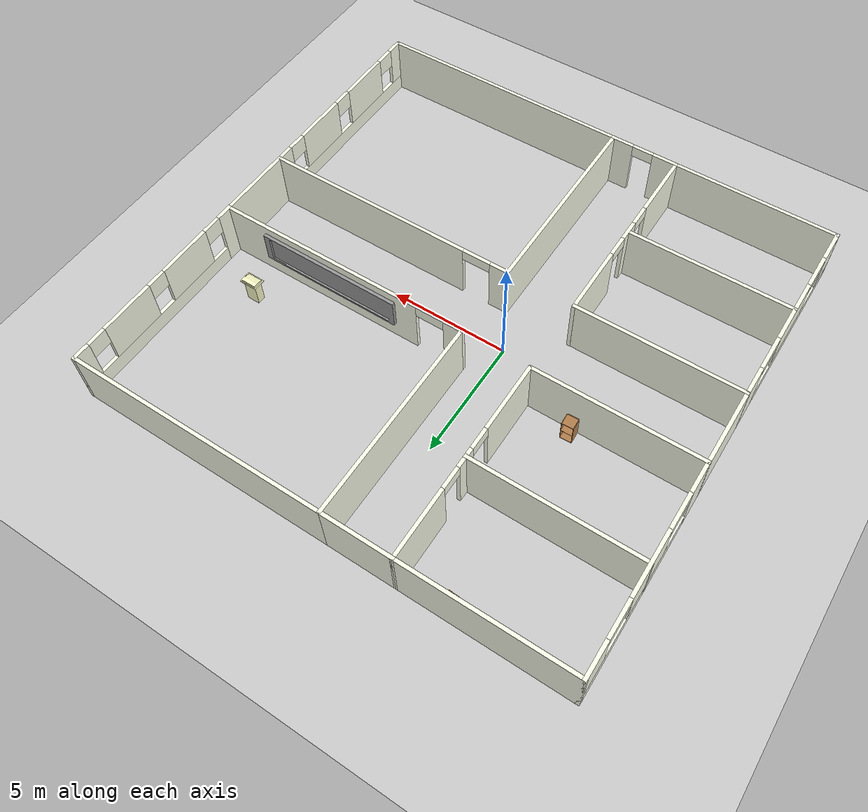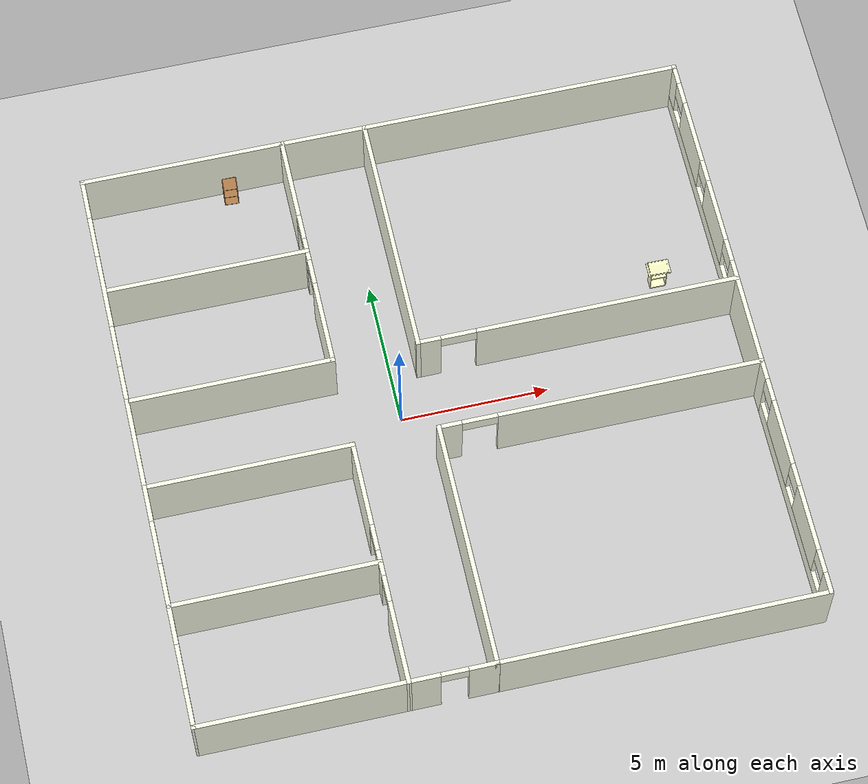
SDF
<sdf version="1.6">
 <world name="default">
  <model name="ground_plane">
   <static>1</static>
   <link name="link">
    <collision name="collision">
     <geometry><plane><normal>0 0 1</normal><size>100 100</size></plane></geometry>
     <surface>
      <contact><collide_bitmask>65535</collide_bitmask></contact>
      <friction><ode><mu>100</mu><mu2>50</mu2></ode></friction>
     </surface>
    </collision>
    <visual name="visual">
     <cast_shadows>0</cast_shadows>
     <geometry><plane><normal>0 0 1</normal><size>100 100</size></plane></geometry>
     <material>
      <script><uri>file://media/materials/scripts/gazebo.material</uri><name>Gazebo/Grey</name></script>
     </material>
    </visual>
   </link>
  </model>
  <model name="college">
   <pose>1.48726 -0.09295 0 0 -0 0</pose>
   <link name="Wall_14">
    <collision name="Wall_14_Collision">
     <geometry><box><size>8.5 0.15 2.5</size></box></geometry>
     <pose>0 0 1.25 0 -0 0</pose>
    </collision>
    <visual name="Wall_14_Visual">
     <pose>0 0 1.25 0 -0 0</pose>
     <geometry><box><size>8.5 0.15 2.5</size></box></geometry>
     <material>
      <script><uri>file://media/materials/scripts/gazebo.material</uri><name>Gazebo/Grey</name></script>
      <ambient>0.988235 1 0.917647 1</ambient>
     </material>
     <meta><layer>0</layer></meta>
    </visual>
    <pose>-0.569753 5.74556 0 0 -0 1.5708</pose>
   </link>
   <link name="Wall_19">
    <pose>-3.42964 5.74918 0 0 -0 1.5708</pose>
    <visual name="Wall_19_Visual_0">
     <pose>-2.76957 0 1.25 0 -0 0</pose>
     <geometry><box><size>2.96087 0.15 2.5</size></box></geometry>
     <material>
      <script><uri>file://media/materials/scripts/gazebo.material</uri><name>Gazebo/Grey</name></script>
      <ambient>0.988235 1 0.917647 1</ambient>
     </material>
     <meta><layer>0</layer></meta>
    </visual>
    <collision name="Wall_19_Collision_0">
     <geometry><box><size>2.96087 0.15 2.5</size></box></geometry>
     <pose>-2.76957 0 1.25 0 -0 0</pose>
    </collision>
    <visual name="Wall_19_Visual_1">
     <pose>0.027105 0 1.25 0 -0 0</pose>
     <geometry><box><size>0.832475 0.15 2.5</size></box></geometry>
     <material>
      <script><uri>file://media/materials/scripts/gazebo.material</uri><name>Gazebo/Grey</name></script>
      <ambient>0.988235 1 0.917647 1</ambient>
     </material>
     <meta><layer>0</layer></meta>
    </visual>
    <collision name="Wall_19_Collision_1">
     <geometry><box><size>0.832475 0.15 2.5</size></box></geometry>
     <pose>0.027105 0 1.25 0 -0 0</pose>
    </collision>
    <visual name="Wall_19_Visual_2">
     <pose>2.79667 0 1.25 0 -0 0</pose>
     <geometry><box><size>2.90666 0.15 2.5</size></box></geometry>
     <material>
      <script><uri>file://media/materials/scripts/gazebo.material</uri><name>Gazebo/Grey</name></script>
      <ambient>0.988235 1 0.917647 1</ambient>
     </material>
     <meta><layer>0</layer></meta>
    </visual>
    <collision name="Wall_19_Collision_2">
     <geometry><box><size>2.90666 0.15 2.5</size></box></geometry>
     <pose>2.79667 0 1.25 0 -0 0</pose>
    </collision>
    <visual name="Wall_19_Visual_3">
     <pose>-0.839132 0 2.25 0 -0 0</pose>
     <geometry><box><size>0.9 0.15 0.5</size></box></geometry>
     <material>
      <script><uri>file://media/materials/scripts/gazebo.material</uri><name>Gazebo/Grey</name></script>
      <ambient>0.988235 1 0.917647 1</ambient>
     </material>
     <meta><layer>0</layer></meta>
    </visual>
    <collision name="Wall_19_Collision_3">
     <geometry><box><size>0.9 0.15 0.5</size></box></geometry>
     <pose>-0.839132 0 2.25 0 -0 0</pose>
    </collision>
    <visual name="Wall_19_Visual_4">
     <pose>0.893342 0 2.25 0 -0 0</pose>
     <geometry><box><size>0.9 0.15 0.5</size></box></geometry>
     <material>
      <script><uri>file://media/materials/scripts/gazebo.material</uri><name>Gazebo/Grey</name></script>
      <ambient>0.988235 1 0.917647 1</ambient>
     </material>
     <meta><layer>0</layer></meta>
    </visual>
    <collision name="Wall_19_Collision_4">
     <geometry><box><size>0.9 0.15 0.5</size></box></geometry>
     <pose>0.893342 0 2.25 0 -0 0</pose>
    </collision>
   </link>
   <link name="Wall_21">
    <pose>4.85525 1.57056 0 0 -0 0</pose>
    <visual name="Wall_21_Visual_0">
     <pose>-5.07887 0 1.25 0 -0 0</pose>
     <geometry><box><size>0.842258 0.15 2.5</size></box></geometry>
     <material>
      <script><uri>file://media/materials/scripts/gazebo.material</uri><name>Gazebo/Grey</name></script>
      <ambient>0.988235 1 0.917647 1</ambient>
     </material>
     <meta><layer>0</layer></meta>
    </visual>
    <collision name="Wall_21_Collision_0">
     <geometry><box><size>0.842258 0.15 2.5</size></box></geometry>
     <pose>-5.07887 0 1.25 0 -0 0</pose>
    </collision>
    <visual name="Wall_21_Visual_1">
     <pose>1.02113 0 1.25 0 -0 0</pose>
     <geometry><box><size>8.95774 0.15 2.5</size></box></geometry>
     <material>
      <script><uri>file://media/materials/scripts/gazebo.material</uri><name>Gazebo/Grey</name></script>
      <ambient>0.988235 1 0.917647 1</ambient>
     </material>
     <meta><layer>0</layer></meta>
    </visual>
    <collision name="Wall_21_Collision_1">
     <geometry><box><size>8.95774 0.15 2.5</size></box></geometry>
     <pose>1.02113 0 1.25 0 -0 0</pose>
    </collision>
    <visual name="Wall_21_Visual_2">
     <pose>-4.05774 0 2.25 0 -0 0</pose>
     <geometry><box><size>1.2 0.15 0.5</size></box></geometry>
     <material>
      <script><uri>file://media/materials/scripts/gazebo.material</uri><name>Gazebo/Grey</name></script>
      <ambient>0.988235 1 0.917647 1</ambient>
     </material>
     <meta><layer>0</layer></meta>
    </visual>
    <collision name="Wall_21_Collision_2">
     <geometry><box><size>1.2 0.15 0.5</size></box></geometry>
     <pose>-4.05774 0 2.25 0 -0 0</pose>
    </collision>
   </link>
   <link name="Wall_23">
    <pose>4.84845 -1.5742 0 0 -0 0</pose>
    <visual name="Wall_23_Visual_0">
     <pose>-5.07963 0 1.25 0 -0 0</pose>
     <geometry><box><size>0.84073 0.15 2.5</size></box></geometry>
     <material>
      <script><uri>file://media/materials/scripts/gazebo.material</uri><name>Gazebo/Grey</name></script>
      <ambient>0.988235 1 0.917647 1</ambient>
     </material>
     <meta><layer>0</layer></meta>
    </visual>
    <collision name="Wall_23_Collision_0">
     <geometry><box><size>0.84073 0.15 2.5</size></box></geometry>
     <pose>-5.07963 0 1.25 0 -0 0</pose>
    </collision>
    <visual name="Wall_23_Visual_1">
     <pose>1.02036 0 1.25 0 -0 0</pose>
     <geometry><box><size>8.95927 0.15 2.5</size></box></geometry>
     <material>
      <script><uri>file://media/materials/scripts/gazebo.material</uri><name>Gazebo/Grey</name></script>
      <ambient>0.988235 1 0.917647 1</ambient>
     </material>
     <meta><layer>0</layer></meta>
    </visual>
    <collision name="Wall_23_Collision_1">
     <geometry><box><size>8.95927 0.15 2.5</size></box></geometry>
     <pose>1.02036 0 1.25 0 -0 0</pose>
    </collision>
    <visual name="Wall_23_Visual_2">
     <pose>-4.05927 0 2.25 0 -0 0</pose>
     <geometry><box><size>1.2 0.15 0.5</size></box></geometry>
     <material>
      <script><uri>file://media/materials/scripts/gazebo.material</uri><name>Gazebo/Grey</name></script>
      <ambient>0.988235 1 0.917647 1</ambient>
     </material>
     <meta><layer>0</layer></meta>
    </visual>
    <collision name="Wall_23_Collision_2">
     <geometry><box><size>1.2 0.15 0.5</size></box></geometry>
     <pose>-4.05927 0 2.25 0 -0 0</pose>
    </collision>
   </link>
   <link name="Wall_24">
    <pose>10.2735 -5.7492 0 0 0 -1.5708</pose>
    <visual name="Wall_24_Visual_0">
     <pose>-3.87076 0 1.25 0 -0 0</pose>
     <geometry><box><size>0.758485 0.15 2.5</size></box></geometry>
     <material>
      <script><uri>file://media/materials/scripts/gazebo.material</uri><name>Gazebo/Grey</name></script>
      <ambient>0.988235 1 0.917647 1</ambient>
     </material>
     <meta><layer>0</layer></meta>
    </visual>
    <collision name="Wall_24_Collision_0">
     <geometry><box><size>0.758485 0.15 2.5</size></box></geometry>
     <pose>-3.87076 0 1.25 0 -0 0</pose>
    </collision>
    <visual name="Wall_24_Visual_1">
     <pose>0.379243 0 0.35 0 -0 0</pose>
     <geometry><box><size>7.74151 0.15 0.7</size></box></geometry>
     <material>
      <script><uri>file://media/materials/scripts/gazebo.material</uri><name>Gazebo/Grey</name></script>
      <ambient>0.988235 1 0.917647 1</ambient>
     </material>
     <meta><layer>0</layer></meta>
    </visual>
    <collision name="Wall_24_Collision_1">
     <geometry><box><size>7.74151 0.15 0.7</size></box></geometry>
     <pose>0.379243 0 0.35 0 -0 0</pose>
    </collision>
    <visual name="Wall_24_Visual_2">
     <pose>-1.5349 0 1.6 0 -0 0</pose>
     <geometry><box><size>2.31323 0.15 1.8</size></box></geometry>
     <material>
      <script><uri>file://media/materials/scripts/gazebo.material</uri><name>Gazebo/Grey</name></script>
      <ambient>0.988235 1 0.917647 1</ambient>
     </material>
     <meta><layer>0</layer></meta>
    </visual>
    <collision name="Wall_24_Collision_2">
     <geometry><box><size>2.31323 0.15 1.8</size></box></geometry>
     <pose>-1.5349 0 1.6 0 -0 0</pose>
    </collision>
    <visual name="Wall_24_Visual_3">
     <pose>1.56248 0 1.6 0 -0 0</pose>
     <geometry><box><size>2.28153 0.15 1.8</size></box></geometry>
     <material>
      <script><uri>file://media/materials/scripts/gazebo.material</uri><name>Gazebo/Grey</name></script>
      <ambient>0.988235 1 0.917647 1</ambient>
     </material>
     <meta><layer>0</layer></meta>
    </visual>
    <collision name="Wall_24_Collision_3">
     <geometry><box><size>2.28153 0.15 1.8</size></box></geometry>
     <pose>1.56248 0 1.6 0 -0 0</pose>
    </collision>
    <visual name="Wall_24_Visual_4">
     <pose>3.87662 0 1.6 0 -0 0</pose>
     <geometry><box><size>0.746754 0.15 1.8</size></box></geometry>
     <material>
      <script><uri>file://media/materials/scripts/gazebo.material</uri><name>Gazebo/Grey</name></script>
      <ambient>0.988235 1 0.917647 1</ambient>
     </material>
     <meta><layer>0</layer></meta>
    </visual>
    <collision name="Wall_24_Collision_4">
     <geometry><box><size>0.746754 0.15 1.8</size></box></geometry>
     <pose>3.87662 0 1.6 0 -0 0</pose>
    </collision>
    <visual name="Wall_24_Visual_5">
     <pose>-3.09151 0 2.1 0 -0 0</pose>
     <geometry><box><size>0.8 0.15 0.8</size></box></geometry>
     <material>
      <script><uri>file://media/materials/scripts/gazebo.material</uri><name>Gazebo/Grey</name></script>
      <ambient>0.988235 1 0.917647 1</ambient>
     </material>
     <meta><layer>0</layer></meta>
    </visual>
    <collision name="Wall_24_Collision_5">
     <geometry><box><size>0.8 0.15 0.8</size></box></geometry>
     <pose>-3.09151 0 2.1 0 -0 0</pose>
    </collision>
    <visual name="Wall_24_Visual_6">
     <pose>0.021717 0 2.1 0 -0 0</pose>
     <geometry><box><size>0.8 0.15 0.8</size></box></geometry>
     <material>
      <script><uri>file://media/materials/scripts/gazebo.material</uri><name>Gazebo/Grey</name></script>
      <ambient>0.988235 1 0.917647 1</ambient>
     </material>
     <meta><layer>0</layer></meta>
    </visual>
    <collision name="Wall_24_Collision_6">
     <geometry><box><size>0.8 0.15 0.8</size></box></geometry>
     <pose>0.021717 0 2.1 0 -0 0</pose>
    </collision>
    <visual name="Wall_24_Visual_7">
     <pose>3.10325 0 2.1 0 -0 0</pose>
     <geometry><box><size>0.8 0.15 0.8</size></box></geometry>
     <material>
      <script><uri>file://media/materials/scripts/gazebo.material</uri><name>Gazebo/Grey</name></script>
      <ambient>0.988235 1 0.917647 1</ambient>
     </material>
     <meta><layer>0</layer></meta>
    </visual>
    <collision name="Wall_24_Collision_7">
     <geometry><box><size>0.8 0.15 0.8</size></box></geometry>
     <pose>3.10325 0 2.1 0 -0 0</pose>
    </collision>
   </link>
   <link name="Wall_25">
    <collision name="Wall_25_Collision">
     <geometry><box><size>11 0.15 2.5</size></box></geometry>
     <pose>0 0 1.25 0 -0 0</pose>
    </collision>
    <visual name="Wall_25_Visual">
     <pose>0 0 1.25 0 -0 0</pose>
     <geometry><box><size>11 0.15 2.5</size></box></geometry>
     <material>
      <script><uri>file://media/materials/scripts/gazebo.material</uri><name>Gazebo/Grey</name></script>
      <ambient>0.988235 1 0.917647 1</ambient>
     </material>
     <meta><layer>0</layer></meta>
    </visual>
    <pose>4.84845 -9.9242 0 0 -0 3.14159</pose>
   </link>
   <link name="Wall_27">
    <pose>10.2802 5.74556 0 0 -0 1.5708</pose>
    <visual name="Wall_27_Visual_0">
     <pose>-3.87825 0 1.25 0 -0 0</pose>
     <geometry><box><size>0.743501 0.15 2.5</size></box></geometry>
     <material>
      <script><uri>file://media/materials/scripts/gazebo.material</uri><name>Gazebo/Grey</name></script>
      <ambient>0.988235 1 0.917647 1</ambient>
     </material>
     <meta><layer>0</layer></meta>
    </visual>
    <collision name="Wall_27_Collision_0">
     <geometry><box><size>0.743501 0.15 2.5</size></box></geometry>
     <pose>-3.87825 0 1.25 0 -0 0</pose>
    </collision>
    <visual name="Wall_27_Visual_1">
     <pose>0.37175 0 0.35 0 -0 0</pose>
     <geometry><box><size>7.7565 0.15 0.7</size></box></geometry>
     <material>
      <script><uri>file://media/materials/scripts/gazebo.material</uri><name>Gazebo/Grey</name></script>
      <ambient>0.988235 1 0.917647 1</ambient>
     </material>
     <meta><layer>0</layer></meta>
    </visual>
    <collision name="Wall_27_Collision_1">
     <geometry><box><size>7.7565 0.15 0.7</size></box></geometry>
     <pose>0.37175 0 0.35 0 -0 0</pose>
    </collision>
    <visual name="Wall_27_Visual_2">
     <pose>-1.55549 0 1.6 0 -0 0</pose>
     <geometry><box><size>2.30202 0.15 1.8</size></box></geometry>
     <material>
      <script><uri>file://media/materials/scripts/gazebo.material</uri><name>Gazebo/Grey</name></script>
      <ambient>0.988235 1 0.917647 1</ambient>
     </material>
     <meta><layer>0</layer></meta>
    </visual>
    <collision name="Wall_27_Collision_2">
     <geometry><box><size>2.30202 0.15 1.8</size></box></geometry>
     <pose>-1.55549 0 1.6 0 -0 0</pose>
    </collision>
    <visual name="Wall_27_Visual_3">
     <pose>1.54849 0 1.6 0 -0 0</pose>
     <geometry><box><size>2.30593 0.15 1.8</size></box></geometry>
     <material>
      <script><uri>file://media/materials/scripts/gazebo.material</uri><name>Gazebo/Grey</name></script>
      <ambient>0.988235 1 0.917647 1</ambient>
     </material>
     <meta><layer>0</layer></meta>
    </visual>
    <collision name="Wall_27_Collision_3">
     <geometry><box><size>2.30593 0.15 1.8</size></box></geometry>
     <pose>1.54849 0 1.6 0 -0 0</pose>
    </collision>
    <visual name="Wall_27_Visual_4">
     <pose>3.87573 0 1.6 0 -0 0</pose>
     <geometry><box><size>0.74855 0.15 1.8</size></box></geometry>
     <material>
      <script><uri>file://media/materials/scripts/gazebo.material</uri><name>Gazebo/Grey</name></script>
      <ambient>0.988235 1 0.917647 1</ambient>
     </material>
     <meta><layer>0</layer></meta>
    </visual>
    <collision name="Wall_27_Collision_4">
     <geometry><box><size>0.74855 0.15 1.8</size></box></geometry>
     <pose>3.87573 0 1.6 0 -0 0</pose>
    </collision>
    <visual name="Wall_27_Visual_5">
     <pose>-3.1065 0 2.1 0 -0 0</pose>
     <geometry><box><size>0.8 0.15 0.8</size></box></geometry>
     <material>
      <script><uri>file://media/materials/scripts/gazebo.material</uri><name>Gazebo/Grey</name></script>
      <ambient>0.988235 1 0.917647 1</ambient>
     </material>
     <meta><layer>0</layer></meta>
    </visual>
    <collision name="Wall_27_Collision_5">
     <geometry><box><size>0.8 0.15 0.8</size></box></geometry>
     <pose>-3.1065 0 2.1 0 -0 0</pose>
    </collision>
    <visual name="Wall_27_Visual_6">
     <pose>-0.004479 0 2.1 0 -0 0</pose>
     <geometry><box><size>0.8 0.15 0.8</size></box></geometry>
     <material>
      <script><uri>file://media/materials/scripts/gazebo.material</uri><name>Gazebo/Grey</name></script>
      <ambient>0.988235 1 0.917647 1</ambient>
     </material>
     <meta><layer>0</layer></meta>
    </visual>
    <collision name="Wall_27_Collision_6">
     <geometry><box><size>0.8 0.15 0.8</size></box></geometry>
     <pose>-0.004479 0 2.1 0 -0 0</pose>
    </collision>
    <visual name="Wall_27_Visual_7">
     <pose>3.10145 0 2.1 0 -0 0</pose>
     <geometry><box><size>0.8 0.15 0.8</size></box></geometry>
     <material>
      <script><uri>file://media/materials/scripts/gazebo.material</uri><name>Gazebo/Grey</name></script>
      <ambient>0.988235 1 0.917647 1</ambient>
     </material>
     <meta><layer>0</layer></meta>
    </visual>
    <collision name="Wall_27_Collision_7">
     <geometry><box><size>0.8 0.15 0.8</size></box></geometry>
     <pose>3.10145 0 2.1 0 -0 0</pose>
    </collision>
   </link>
   <link name="Wall_28">
    <collision name="Wall_28_Collision">
     <geometry><box><size>11 0.15 2.5</size></box></geometry>
     <pose>0 0 1.25 0 -0 0</pose>
    </collision>
    <visual name="Wall_28_Visual">
     <pose>0 0 1.25 0 -0 0</pose>
     <geometry><box><size>11 0.15 2.5</size></box></geometry>
     <material>
      <script><uri>file://media/materials/scripts/gazebo.material</uri><name>Gazebo/Grey</name></script>
      <ambient>0.988235 1 0.917647 1</ambient>
     </material>
     <meta><layer>0</layer></meta>
    </visual>
    <pose>4.85525 9.92056 0 0 -0 3.14159</pose>
   </link>
   <link name="Wall_32">
    <pose>-10.2765 -5.74165 0 0 0 -1.5708</pose>
    <visual name="Wall_32_Visual_0">
     <pose>-3.60322 0 1.25 0 -0 0</pose>
     <geometry><box><size>1.29356 0.15 2.5</size></box></geometry>
     <material>
      <script><uri>file://media/materials/scripts/gazebo.material</uri><name>Gazebo/Grey</name></script>
      <ambient>0.988235 1 0.917647 1</ambient>
     </material>
     <meta><layer>0</layer></meta>
    </visual>
    <collision name="Wall_32_Collision_0">
     <geometry><box><size>1.29356 0.15 2.5</size></box></geometry>
     <pose>-3.60322 0 1.25 0 -0 0</pose>
    </collision>
    <visual name="Wall_32_Visual_1">
     <pose>0.64678 0 0.35 0 -0 0</pose>
     <geometry><box><size>7.20644 0.15 0.7</size></box></geometry>
     <material>
      <script><uri>file://media/materials/scripts/gazebo.material</uri><name>Gazebo/Grey</name></script>
      <ambient>0.988235 1 0.917647 1</ambient>
     </material>
     <meta><layer>0</layer></meta>
    </visual>
    <collision name="Wall_32_Collision_1">
     <geometry><box><size>7.20644 0.15 0.7</size></box></geometry>
     <pose>0.64678 0 0.35 0 -0 0</pose>
    </collision>
    <visual name="Wall_32_Visual_2">
     <pose>-0.045598 0 1.6 0 -0 0</pose>
     <geometry><box><size>2.82168 0.15 1.8</size></box></geometry>
     <material>
      <script><uri>file://media/materials/scripts/gazebo.material</uri><name>Gazebo/Grey</name></script>
      <ambient>0.988235 1 0.917647 1</ambient>
     </material>
     <meta><layer>0</layer></meta>
    </visual>
    <collision name="Wall_32_Collision_2">
     <geometry><box><size>2.82168 0.15 1.8</size></box></geometry>
     <pose>-0.045598 0 1.6 0 -0 0</pose>
    </collision>
    <visual name="Wall_32_Visual_3">
     <pose>3.55762 0 1.6 0 -0 0</pose>
     <geometry><box><size>1.38476 0.15 1.8</size></box></geometry>
     <material>
      <script><uri>file://media/materials/scripts/gazebo.material</uri><name>Gazebo/Grey</name></script>
      <ambient>0.988235 1 0.917647 1</ambient>
     </material>
     <meta><layer>0</layer></meta>
    </visual>
    <collision name="Wall_32_Collision_3">
     <geometry><box><size>1.38476 0.15 1.8</size></box></geometry>
     <pose>3.55762 0 1.6 0 -0 0</pose>
    </collision>
    <visual name="Wall_32_Visual_4">
     <pose>-2.20644 0 2.2 0 -0 0</pose>
     <geometry><box><size>1.5 0.15 0.6</size></box></geometry>
     <material>
      <script><uri>file://media/materials/scripts/gazebo.material</uri><name>Gazebo/Grey</name></script>
      <ambient>0.988235 1 0.917647 1</ambient>
     </material>
     <meta><layer>0</layer></meta>
    </visual>
    <collision name="Wall_32_Collision_4">
     <geometry><box><size>1.5 0.15 0.6</size></box></geometry>
     <pose>-2.20644 0 2.2 0 -0 0</pose>
    </collision>
    <visual name="Wall_32_Visual_5">
     <pose>2.11524 0 2.2 0 -0 0</pose>
     <geometry><box><size>1.5 0.15 0.6</size></box></geometry>
     <material>
      <script><uri>file://media/materials/scripts/gazebo.material</uri><name>Gazebo/Grey</name></script>
      <ambient>0.988235 1 0.917647 1</ambient>
     </material>
     <meta><layer>0</layer></meta>
    </visual>
    <collision name="Wall_32_Collision_5">
     <geometry><box><size>1.5 0.15 0.6</size></box></geometry>
     <pose>2.11524 0 2.2 0 -0 0</pose>
    </collision>
   </link>
   <link name="Wall_40">
    <collision name="Wall_40_Collision">
     <geometry><box><size>7 0.15 2.5</size></box></geometry>
     <pose>0 0 1.25 0 -0 0</pose>
    </collision>
    <visual name="Wall_40_Visual">
     <pose>0 0 1.25 0 -0 0</pose>
     <geometry><box><size>7 0.15 2.5</size></box></geometry>
     <material>
      <script><uri>file://media/materials/scripts/gazebo.material</uri><name>Gazebo/Grey</name></script>
      <ambient>0.988235 1 0.917647 1</ambient>
     </material>
     <meta><layer>0</layer></meta>
    </visual>
    <pose>-6.84998 -5.77055 0 0 -0 3.14159</pose>
   </link>
   <link name="Wall_42">
    <collision name="Wall_42_Collision">
     <geometry><box><size>7 0.15 2.5</size></box></geometry>
     <pose>0 0 1.25 0 -0 0</pose>
    </collision>
    <visual name="Wall_42_Visual">
     <pose>0 0 1.25 0 -0 0</pose>
     <geometry><box><size>7 0.15 2.5</size></box></geometry>
     <material>
      <script><uri>file://media/materials/scripts/gazebo.material</uri><name>Gazebo/Grey</name></script>
      <ambient>0.988235 1 0.917647 1</ambient>
     </material>
     <meta><layer>0</layer></meta>
    </visual>
    <pose>-6.85464 1.57418 0 0 -0 3.14159</pose>
   </link>
   <link name="Wall_43">
    <pose>-10.2796 5.74918 0 0 -0 1.5708</pose>
    <visual name="Wall_43_Visual_0">
     <pose>-3.56529 0 1.25 0 -0 0</pose>
     <geometry><box><size>1.36942 0.15 2.5</size></box></geometry>
     <material>
      <script><uri>file://media/materials/scripts/gazebo.material</uri><name>Gazebo/Grey</name></script>
      <ambient>0.988235 1 0.917647 1</ambient>
     </material>
     <meta><layer>0</layer></meta>
    </visual>
    <collision name="Wall_43_Collision_0">
     <geometry><box><size>1.36942 0.15 2.5</size></box></geometry>
     <pose>-3.56529 0 1.25 0 -0 0</pose>
    </collision>
    <visual name="Wall_43_Visual_1">
     <pose>0.684711 0 0.35 0 -0 0</pose>
     <geometry><box><size>7.13058 0.15 0.7</size></box></geometry>
     <material>
      <script><uri>file://media/materials/scripts/gazebo.material</uri><name>Gazebo/Grey</name></script>
      <ambient>0.988235 1 0.917647 1</ambient>
     </material>
     <meta><layer>0</layer></meta>
    </visual>
    <collision name="Wall_43_Collision_1">
     <geometry><box><size>7.13058 0.15 0.7</size></box></geometry>
     <pose>0.684711 0 0.35 0 -0 0</pose>
    </collision>
    <visual name="Wall_43_Visual_2">
     <pose>-0.04698 0 1.6 0 -0 0</pose>
     <geometry><box><size>2.6672 0.15 1.8</size></box></geometry>
     <material>
      <script><uri>file://media/materials/scripts/gazebo.material</uri><name>Gazebo/Grey</name></script>
      <ambient>0.988235 1 0.917647 1</ambient>
     </material>
     <meta><layer>0</layer></meta>
    </visual>
    <collision name="Wall_43_Collision_2">
     <geometry><box><size>2.6672 0.15 1.8</size></box></geometry>
     <pose>-0.04698 0 1.6 0 -0 0</pose>
    </collision>
    <visual name="Wall_43_Visual_3">
     <pose>3.51831 0 1.6 0 -0 0</pose>
     <geometry><box><size>1.46338 0.15 1.8</size></box></geometry>
     <material>
      <script><uri>file://media/materials/scripts/gazebo.material</uri><name>Gazebo/Grey</name></script>
      <ambient>0.988235 1 0.917647 1</ambient>
     </material>
     <meta><layer>0</layer></meta>
    </visual>
    <collision name="Wall_43_Collision_3">
     <geometry><box><size>1.46338 0.15 1.8</size></box></geometry>
     <pose>3.51831 0 1.6 0 -0 0</pose>
    </collision>
    <visual name="Wall_43_Visual_4">
     <pose>-2.13058 0 2.2 0 -0 0</pose>
     <geometry><box><size>1.5 0.15 0.6</size></box></geometry>
     <material>
      <script><uri>file://media/materials/scripts/gazebo.material</uri><name>Gazebo/Grey</name></script>
      <ambient>0.988235 1 0.917647 1</ambient>
     </material>
     <meta><layer>0</layer></meta>
    </visual>
    <collision name="Wall_43_Collision_4">
     <geometry><box><size>1.5 0.15 0.6</size></box></geometry>
     <pose>-2.13058 0 2.2 0 -0 0</pose>
    </collision>
    <visual name="Wall_43_Visual_5">
     <pose>2.03662 0 2.2 0 -0 0</pose>
     <geometry><box><size>1.5 0.15 0.6</size></box></geometry>
     <material>
      <script><uri>file://media/materials/scripts/gazebo.material</uri><name>Gazebo/Grey</name></script>
      <ambient>0.988235 1 0.917647 1</ambient>
     </material>
     <meta><layer>0</layer></meta>
    </visual>
    <collision name="Wall_43_Collision_5">
     <geometry><box><size>1.5 0.15 0.6</size></box></geometry>
     <pose>2.03662 0 2.2 0 -0 0</pose>
    </collision>
   </link>
   <link name="Wall_45">
    <collision name="Wall_45_Collision">
     <geometry><box><size>7 0.15 2.5</size></box></geometry>
     <pose>0 0 1.25 0 -0 0</pose>
    </collision>
    <visual name="Wall_45_Visual">
     <pose>0 0 1.25 0 -0 0</pose>
     <geometry><box><size>7 0.15 2.5</size></box></geometry>
     <material>
      <script><uri>file://media/materials/scripts/gazebo.material</uri><name>Gazebo/Grey</name></script>
      <ambient>0.988235 1 0.917647 1</ambient>
     </material>
     <meta><layer>0</layer></meta>
    </visual>
    <pose>-6.85464 9.92418 0 0 -0 0</pose>
   </link>
   <link name="Wall_48">
    <collision name="Wall_48_Collision">
     <geometry><box><size>7 0.15 2.5</size></box></geometry>
     <pose>0 0 1.25 0 -0 0</pose>
    </collision>
    <visual name="Wall_48_Visual">
     <pose>0 0 1.25 0 -0 0</pose>
     <geometry><box><size>7 0.15 2.5</size></box></geometry>
     <material>
      <script><uri>file://media/materials/scripts/gazebo.material</uri><name>Gazebo/Grey</name></script>
      <ambient>0.988235 1 0.917647 1</ambient>
     </material>
     <meta><layer>0</layer></meta>
    </visual>
    <pose>-6.85154 -9.92042 0 0 0 -0.001102</pose>
   </link>
   <link name="Wall_50">
    <collision name="Wall_50_Collision">
     <geometry><box><size>7.00001 0.15 2.5</size></box></geometry>
     <pose>0 0 1.25 0 -0 0</pose>
    </collision>
    <visual name="Wall_50_Visual">
     <pose>0 0 1.25 0 -0 0</pose>
     <geometry><box><size>7.00001 0.15 2.5</size></box></geometry>
     <material>
      <script><uri>file://media/materials/scripts/gazebo.material</uri><name>Gazebo/Grey</name></script>
      <ambient>0.988235 1 0.917647 1</ambient>
     </material>
     <meta><layer>0</layer></meta>
    </visual>
    <pose>-6.85154 -1.56665 0 0 -0 0</pose>
   </link>
   <link name="Wall_6">
    <pose>-3.42655 -5.74045 0 0 -0 1.5708</pose>
    <visual name="Wall_6_Visual_0">
     <pose>-2.83912 0 1.25 0 -0 0</pose>
     <geometry><box><size>2.83925 0.15 2.5</size></box></geometry>
     <material>
      <script><uri>file://media/materials/scripts/gazebo.material</uri><name>Gazebo/Grey</name></script>
      <ambient>0.988235 1 0.917647 1</ambient>
     </material>
     <meta><layer>0</layer></meta>
    </visual>
    <collision name="Wall_6_Collision_0">
     <geometry><box><size>2.83925 0.15 2.5</size></box></geometry>
     <pose>-2.83912 0 1.25 0 -0 0</pose>
    </collision>
    <visual name="Wall_6_Visual_1">
     <pose>-0.069089 0 1.25 0 -0 0</pose>
     <geometry><box><size>0.900821 0.15 2.5</size></box></geometry>
     <material>
      <script><uri>file://media/materials/scripts/gazebo.material</uri><name>Gazebo/Grey</name></script>
      <ambient>0.988235 1 0.917647 1</ambient>
     </material>
     <meta><layer>0</layer></meta>
    </visual>
    <collision name="Wall_6_Collision_1">
     <geometry><box><size>0.900821 0.15 2.5</size></box></geometry>
     <pose>-0.069089 0 1.25 0 -0 0</pose>
    </collision>
    <visual name="Wall_6_Visual_2">
     <pose>2.77003 0 1.25 0 -0 0</pose>
     <geometry><box><size>2.97742 0.15 2.5</size></box></geometry>
     <material>
      <script><uri>file://media/materials/scripts/gazebo.material</uri><name>Gazebo/Grey</name></script>
      <ambient>0.988235 1 0.917647 1</ambient>
     </material>
     <meta><layer>0</layer></meta>
    </visual>
    <collision name="Wall_6_Collision_2">
     <geometry><box><size>2.97742 0.15 2.5</size></box></geometry>
     <pose>2.77003 0 1.25 0 -0 0</pose>
    </collision>
    <visual name="Wall_6_Visual_3">
     <pose>-0.9695 0 2.25 0 -0 0</pose>
     <geometry><box><size>0.9 0.15 0.5</size></box></geometry>
     <material>
      <script><uri>file://media/materials/scripts/gazebo.material</uri><name>Gazebo/Grey</name></script>
      <ambient>0.988235 1 0.917647 1</ambient>
     </material>
     <meta><layer>0</layer></meta>
    </visual>
    <collision name="Wall_6_Collision_3">
     <geometry><box><size>0.9 0.15 0.5</size></box></geometry>
     <pose>-0.9695 0 2.25 0 -0 0</pose>
    </collision>
    <visual name="Wall_6_Visual_4">
     <pose>0.831322 0 2.25 0 -0 0</pose>
     <geometry><box><size>0.9 0.15 0.5</size></box></geometry>
     <material>
      <script><uri>file://media/materials/scripts/gazebo.material</uri><name>Gazebo/Grey</name></script>
      <ambient>0.988235 1 0.917647 1</ambient>
     </material>
     <meta><layer>0</layer></meta>
    </visual>
    <collision name="Wall_6_Collision_4">
     <geometry><box><size>0.9 0.15 0.5</size></box></geometry>
     <pose>0.831322 0 2.25 0 -0 0</pose>
    </collision>
   </link>
   <link name="Wall_65">
    <collision name="Wall_65_Collision">
     <geometry><box><size>7 0.15 2.5</size></box></geometry>
     <pose>0 0 1.25 0 -0 0</pose>
    </collision>
    <visual name="Wall_65_Visual">
     <pose>0 0 1.25 0 -0 0</pose>
     <geometry><box><size>7 0.15 2.5</size></box></geometry>
     <material>
      <script><uri>file://media/materials/scripts/gazebo.material</uri><name>Gazebo/Grey</name></script>
      <ambient>0.988235 1 0.917647 1</ambient>
     </material>
     <meta><layer>0</layer></meta>
    </visual>
    <pose>-6.85541 5.71678 0 0 -0 3.14159</pose>
   </link>
   <link name="Wall_67">
    <pose>-2.00155 -9.9242 0 0 -0 0</pose>
    <visual name="Wall_67_Visual_0">
     <pose>-0.947932 0 1.25 0 -0 0</pose>
     <geometry><box><size>1.10414 0.15 2.5</size></box></geometry>
     <material>
      <script><uri>file://media/materials/scripts/gazebo.material</uri><name>Gazebo/Grey</name></script>
      <ambient>0.988235 1 0.917647 1</ambient>
     </material>
     <meta><layer>0</layer></meta>
    </visual>
    <collision name="Wall_67_Collision_0">
     <geometry><box><size>1.10414 0.15 2.5</size></box></geometry>
     <pose>-0.947932 0 1.25 0 -0 0</pose>
    </collision>
    <visual name="Wall_67_Visual_1">
     <pose>1.00207 0 1.25 0 -0 0</pose>
     <geometry><box><size>0.995863 0.15 2.5</size></box></geometry>
     <material>
      <script><uri>file://media/materials/scripts/gazebo.material</uri><name>Gazebo/Grey</name></script>
      <ambient>0.988235 1 0.917647 1</ambient>
     </material>
     <meta><layer>0</layer></meta>
    </visual>
    <collision name="Wall_67_Collision_1">
     <geometry><box><size>0.995863 0.15 2.5</size></box></geometry>
     <pose>1.00207 0 1.25 0 -0 0</pose>
    </collision>
    <visual name="Wall_67_Visual_2">
     <pose>0.054137 0 2.25 0 -0 0</pose>
     <geometry><box><size>0.9 0.15 0.5</size></box></geometry>
     <material>
      <script><uri>file://media/materials/scripts/gazebo.material</uri><name>Gazebo/Grey</name></script>
      <ambient>0.988235 1 0.917647 1</ambient>
     </material>
     <meta><layer>0</layer></meta>
    </visual>
    <collision name="Wall_67_Collision_2">
     <geometry><box><size>0.9 0.15 0.5</size></box></geometry>
     <pose>0.054137 0 2.25 0 -0 0</pose>
    </collision>
   </link>
   <link name="Wall_69">
    <collision name="Wall_69_Collision">
     <geometry><box><size>3.29084 0.15 2.5</size></box></geometry>
     <pose>0 0 1.25 0 -0 0</pose>
    </collision>
    <visual name="Wall_69_Visual">
     <pose>0 0 1.25 0 -0 0</pose>
     <geometry><box><size>3.29084 0.15 2.5</size></box></geometry>
     <material>
      <script><uri>file://media/materials/scripts/gazebo.material</uri><name>Gazebo/Grey</name></script>
      <ambient>0.988235 1 0.917647 1</ambient>
     </material>
     <meta><layer>0</layer></meta>
    </visual>
    <pose>-10.2781 0.003767 0 0 0 -1.56981</pose>
   </link>
   <link name="Wall_71">
    <collision name="Wall_71_Collision">
     <geometry><box><size>3.29477 0.15 2.5</size></box></geometry>
     <pose>0 0 1.25 0 -0 0</pose>
    </collision>
    <visual name="Wall_71_Visual">
     <pose>0 0 1.25 0 -0 0</pose>
     <geometry><box><size>3.29477 0.15 2.5</size></box></geometry>
     <material>
      <script><uri>file://media/materials/scripts/gazebo.material</uri><name>Gazebo/Grey</name></script>
      <ambient>0.988235 1 0.917647 1</ambient>
     </material>
     <meta><layer>0</layer></meta>
    </visual>
    <pose>10.2768 -0.001817 0 0 0 -1.57296</pose>
   </link>
   <link name="Wall_73">
    <collision name="Wall_73_Collision">
     <geometry><box><size>3.00989 0.15 2.5</size></box></geometry>
     <pose>0 0 1.25 0 -0 0</pose>
    </collision>
    <visual name="Wall_73_Visual">
     <pose>0 0 1.25 0 -0 0</pose>
     <geometry><box><size>3.00989 0.15 2.5</size></box></geometry>
     <material>
      <script><uri>file://media/materials/scripts/gazebo.material</uri><name>Gazebo/Grey</name></script>
      <ambient>0.988235 1 0.917647 1</ambient>
     </material>
     <meta><layer>0</layer></meta>
    </visual>
    <pose>-1.9997 9.92237 0 0 0 -0.001267</pose>
   </link>
   <link name="Wall_9">
    <collision name="Wall_9_Collision">
     <geometry><box><size>8.5 0.15 2.5</size></box></geometry>
     <pose>0 0 1.25 0 -0 0</pose>
    </collision>
    <visual name="Wall_9_Visual">
     <pose>0 0 1.25 0 -0 0</pose>
     <geometry><box><size>8.5 0.15 2.5</size></box></geometry>
     <material>
      <script><uri>file://media/materials/scripts/gazebo.material</uri><name>Gazebo/Grey</name></script>
      <ambient>0.988235 1 0.917647 1</ambient>
     </material>
     <meta><layer>0</layer></meta>
    </visual>
    <pose>-0.576545 -5.7492 0 0 -0 1.5708</pose>
   </link>
   <static>1</static>
  </model>
  <model name="black_board">
   <link name="link_6">
    <pose>1e-06 5e-06 0 0 0 -1.57362</pose>
    <inertial>
     <mass>1</mass>
     <inertia>
      <ixx>0.166667</ixx>
      <ixy>0</ixy>
      <ixz>0</ixz>
      <iyy>0.166667</iyy>
      <iyz>0</iyz>
      <izz>0.166667</izz>
     </inertia>
    </inertial>
    <visual name="visual">
     <geometry>
      <mesh>
       <uri>/home/piyush/rm100/src/robomuse_simulation/models/meshes/black_board/model.dae</uri>
       <scale>1 3 1</scale>
      </mesh>
     </geometry>
     <material>
      <lighting>1</lighting>
      <script><uri>file://media/materials/scripts/gazebo.material</uri><name>Gazebo/Grey</name></script>
      <shader type="pixel"><normal_map>__default__</normal_map></shader>
      <ambient>0.3 0.3 0.3 1</ambient>
      <diffuse>0.7 0.7 0.7 1</diffuse>
      <specular>0.01 0.01 0.01 1</specular>
      <emissive>0 0 0 1</emissive>
     </material>
    </visual>
    <collision name="collision">
     <geometry>
      <mesh>
       <uri>/home/piyush/rm100/src/robomuse_simulation/models/meshes/black_board/model.dae</uri>
       <scale>1 3 1</scale>
      </mesh>
     </geometry>
     <surface>
      <friction>
       <ode><mu>1</mu><mu2>1</mu2><fdir1>0 0 0</fdir1><slip1>0</slip1><slip2>0</slip2></ode>
       <torsional>
        <coefficient>1</coefficient>
        <patch_radius>0</patch_radius>
        <surface_radius>0</surface_radius>
        <use_patch_radius>1</use_patch_radius>
        <ode><slip>0</slip></ode>
       </torsional>
      </friction>
      <bounce><restitution_coefficient>0</restitution_coefficient><threshold>1e+06</threshold></bounce>
      <contact>
       <collide_without_contact>0</collide_without_contact>
       <collide_without_contact_bitmask>1</collide_without_contact_bitmask>
       <collide_bitmask>1</collide_bitmask>
       <ode>
        <soft_cfm>0</soft_cfm>
        <soft_erp>0.2</soft_erp>
        <kp>1e+13</kp>
        <kd>1</kd>
        <max_vel>0.01</max_vel>
        <min_depth>0</min_depth>
       </ode>
       <bullet>
        <split_impulse>1</split_impulse>
        <split_impulse_penetration_threshold>-0.01</split_impulse_penetration_threshold>
        <soft_cfm>0</soft_cfm>
        <soft_erp>0.2</soft_erp>
        <kp>1e+13</kp>
        <kd>1</kd>
       </bullet>
      </contact>
     </surface>
    </collision>
   </link>
   <static>1</static>
   <pose>3.81761 2.47756 0.325076 0 -0 0</pose>
  </model>
  <model name="lecture_stand">
   <link name="link_0">
    <inertial>
     <mass>10</mass>
     <inertia>
      <ixx>0.166667</ixx>
      <ixy>0</ixy>
      <ixz>0</ixz>
      <iyy>0.166667</iyy>
      <iyz>0</iyz>
      <izz>0.166667</izz>
     </inertia>
    </inertial>
    <visual name="visual">
     <geometry>
      <mesh>
       <uri>/home/piyush/rm100/src/robomuse_simulation/models/meshes/lecture_stand/model.dae</uri>
       <scale>1.1 1.1 1.1</scale>
      </mesh>
     </geometry>
     <material>
      <lighting>1</lighting>
      <script><uri>file://media/materials/scripts/gazebo.material</uri><name>Gazebo/Grey</name></script>
      <shader type="normal_map_tangent_space"><normal_map>__default__</normal_map></shader>
      <ambient>0.126 0.099 0.016 1</ambient>
      <diffuse>1 1 0.8 1</diffuse>
      <specular>0.01 0.01 0.01 1</specular>
      <emissive>0 0 0 1</emissive>
     </material>
    </visual>
    <collision name="collision">
     <geometry>
      <mesh>
       <uri>/home/piyush/rm100/src/robomuse_simulation/models/meshes/lecture_stand/model.dae</uri>
       <scale>1.1 1.1 1.1</scale>
      </mesh>
     </geometry>
     <surface>
      <friction>
       <ode><mu>1</mu><mu2>1</mu2><fdir1>0 0 0</fdir1><slip1>0</slip1><slip2>0</slip2></ode>
       <torsional>
        <coefficient>1</coefficient>
        <patch_radius>0</patch_radius>
        <surface_radius>0</surface_radius>
        <use_patch_radius>1</use_patch_radius>
        <ode><slip>0</slip></ode>
       </torsional>
      </friction>
      <bounce><restitution_coefficient>0</restitution_coefficient><threshold>1e+06</threshold></bounce>
      <contact>
       <collide_without_contact>0</collide_without_contact>
       <collide_without_contact_bitmask>1</collide_without_contact_bitmask>
       <collide_bitmask>1</collide_bitmask>
       <ode>
        <soft_cfm>0</soft_cfm>
        <soft_erp>0.2</soft_erp>
        <kp>1e+13</kp>
        <kd>1</kd>
        <max_vel>0.01</max_vel>
        <min_depth>0</min_depth>
       </ode>
       <bullet>
        <split_impulse>1</split_impulse>
        <split_impulse_penetration_threshold>-0.01</split_impulse_penetration_threshold>
        <soft_cfm>0</soft_cfm>
        <soft_erp>0.2</soft_erp>
        <kp>1e+13</kp>
        <kd>1</kd>
       </bullet>
      </contact>
     </surface>
    </collision>
   </link>
   <static>1</static>
   <pose>11.5044 3.65472 0 0 -0 3.12879</pose>
  </model>
  <model name="cabinet_clone">
   <static>1</static>
   <link name="cabinet_bottom_plate">
    <inertial>
     <pose>0 0 -1 0 -0 0</pose>
     <inertia><ixx>2.05</ixx><ixy>0</ixy><ixz>0</ixz><iyy>2.05</iyy><iyz>0</iyz><izz>2.05</izz></inertia>
     <mass>25</mass>
    </inertial>
    <collision name="cabinet_bottom_plate_geom">
     <pose>0 0 0.01 0 -0 0</pose>
     <geometry><box><size>0.45 0.45 0.02</size></box></geometry>
    </collision>
    <visual name="cabinet_bottom_plate_geom_visual">
     <pose>0 0 0.01 0 -0 0</pose>
     <geometry><box><size>0.45 0.45 0.02</size></box></geometry>
     <material>
      <script><uri>file://media/materials/scripts/gazebo.material</uri><name>Gazebo/Wood</name></script>
     </material>
    </visual>
    <collision name="cabinet_bottom_plate_geom_cabinet_back_plate">
     <pose>0.235 0 0.51 0 -0 0</pose>
     <geometry><box><size>0.02 0.45 1.02</size></box></geometry>
    </collision>
    <visual name="cabinet_bottom_plate_geom_cabinet_back_plate_visual">
     <pose>0.235 0 0.51 0 -0 0</pose>
     <geometry><box><size>0.02 0.45 1.02</size></box></geometry>
     <material>
      <script><uri>file://media/materials/scripts/gazebo.material</uri><name>Gazebo/Wood</name></script>
     </material>
    </visual>
    <collision name="cabinet_bottom_plate_geom_cabinet_left_plate">
     <pose>0 0.235 0.51 0 -0 0</pose>
     <geometry><box><size>0.45 0.02 1.02</size></box></geometry>
    </collision>
    <visual name="cabinet_bottom_plate_geom_cabinet_left_plate_visual">
     <pose>0 0.235 0.51 0 -0 0</pose>
     <geometry><box><size>0.45 0.02 1.02</size></box></geometry>
     <material>
      <script><uri>file://media/materials/scripts/gazebo.material</uri><name>Gazebo/Wood</name></script>
     </material>
    </visual>
    <collision name="cabinet_bottom_plate_geom_cabinet_middle_plate">
     <pose>0 0 0.51 0 -0 0</pose>
     <geometry><box><size>0.45 0.45 0.02</size></box></geometry>
    </collision>
    <visual name="cabinet_bottom_plate_geom_cabinet_middle_plate_visual">
     <pose>0 0 0.51 0 -0 0</pose>
     <geometry><box><size>0.45 0.45 0.02</size></box></geometry>
     <material>
      <script><uri>file://media/materials/scripts/gazebo.material</uri><name>Gazebo/Wood</name></script>
     </material>
    </visual>
    <collision name="cabinet_bottom_plate_geom_cabinet_right_plate">
     <pose>0 -0.235 0.51 0 -0 0</pose>
     <geometry><box><size>0.45 0.02 1.02</size></box></geometry>
    </collision>
    <visual name="cabinet_bottom_plate_geom_cabinet_right_plate_visual">
     <pose>0 -0.235 0.51 0 -0 0</pose>
     <geometry><box><size>0.45 0.02 1.02</size></box></geometry>
     <material>
      <script><uri>file://media/materials/scripts/gazebo.material</uri><name>Gazebo/Wood</name></script>
     </material>
    </visual>
    <collision name="cabinet_bottom_plate_geom_cabinet_top_plate">
     <pose>0 0 1.01 0 -0 0</pose>
     <geometry><box><size>0.45 0.45 0.02</size></box></geometry>
    </collision>
    <visual name="cabinet_bottom_plate_geom_cabinet_top_plate_visual">
     <pose>0 0 1.01 0 -0 0</pose>
     <geometry><box><size>0.45 0.45 0.02</size></box></geometry>
     <material>
      <script><uri>file://media/materials/scripts/gazebo.material</uri><name>Gazebo/Wood</name></script>
     </material>
    </visual>
   </link>
   <pose>-3.88786 1.8352 0 0 0 -1.53384</pose>
  </model>
  <model name="cabinet_clone_0">
   <static>1</static>
   <link name="cabinet_bottom_plate">
    <inertial>
     <pose>0 0 -1 0 -0 0</pose>
     <inertia><ixx>2.05</ixx><ixy>0</ixy><ixz>0</ixz><iyy>2.05</iyy><iyz>0</iyz><izz>2.05</izz></inertia>
     <mass>25</mass>
    </inertial>
    <collision name="cabinet_bottom_plate_geom">
     <pose>0 0 0.01 0 -0 0</pose>
     <geometry><box><size>0.45 0.45 0.02</size></box></geometry>
    </collision>
    <visual name="cabinet_bottom_plate_geom_visual">
     <pose>0 0 0.01 0 -0 0</pose>
     <geometry><box><size>0.45 0.45 0.02</size></box></geometry>
     <material>
      <script><uri>file://media/materials/scripts/gazebo.material</uri><name>Gazebo/Wood</name></script>
     </material>
    </visual>
    <collision name="cabinet_bottom_plate_geom_cabinet_back_plate">
     <pose>0.235 0 0.51 0 -0 0</pose>
     <geometry><box><size>0.02 0.45 1.02</size></box></geometry>
    </collision>
    <visual name="cabinet_bottom_plate_geom_cabinet_back_plate_visual">
     <pose>0.235 0 0.51 0 -0 0</pose>
     <geometry><box><size>0.02 0.45 1.02</size></box></geometry>
     <material>
      <script><uri>file://media/materials/scripts/gazebo.material</uri><name>Gazebo/Wood</name></script>
     </material>
    </visual>
    <collision name="cabinet_bottom_plate_geom_cabinet_left_plate">
     <pose>0 0.235 0.51 0 -0 0</pose>
     <geometry><box><size>0.45 0.02 1.02</size></box></geometry>
    </collision>
    <visual name="cabinet_bottom_plate_geom_cabinet_left_plate_visual">
     <pose>0 0.235 0.51 0 -0 0</pose>
     <geometry><box><size>0.45 0.02 1.02</size></box></geometry>
     <material>
      <script><uri>file://media/materials/scripts/gazebo.material</uri><name>Gazebo/Wood</name></script>
     </material>
    </visual>
    <collision name="cabinet_bottom_plate_geom_cabinet_middle_plate">
     <pose>0 0 0.51 0 -0 0</pose>
     <geometry><box><size>0.45 0.45 0.02</size></box></geometry>
    </collision>
    <visual name="cabinet_bottom_plate_geom_cabinet_middle_plate_visual">
     <pose>0 0 0.51 0 -0 0</pose>
     <geometry><box><size>0.45 0.45 0.02</size></box></geometry>
     <material>
      <script><uri>file://media/materials/scripts/gazebo.material</uri><name>Gazebo/Wood</name></script>
     </material>
    </visual>
    <collision name="cabinet_bottom_plate_geom_cabinet_right_plate">
     <pose>0 -0.235 0.51 0 -0 0</pose>
     <geometry><box><size>0.45 0.02 1.02</size></box></geometry>
    </collision>
    <visual name="cabinet_bottom_plate_geom_cabinet_right_plate_visual">
     <pose>0 -0.235 0.51 0 -0 0</pose>
     <geometry><box><size>0.45 0.02 1.02</size></box></geometry>
     <material>
      <script><uri>file://media/materials/scripts/gazebo.material</uri><name>Gazebo/Wood</name></script>
     </material>
    </visual>
    <collision name="cabinet_bottom_plate_geom_cabinet_top_plate">
     <pose>0 0 1.01 0 -0 0</pose>
     <geometry><box><size>0.45 0.45 0.02</size></box></geometry>
    </collision>
    <visual name="cabinet_bottom_plate_geom_cabinet_top_plate_visual">
     <pose>0 0 1.01 0 -0 0</pose>
     <geometry><box><size>0.45 0.45 0.02</size></box></geometry>
     <material>
      <script><uri>file://media/materials/scripts/gazebo.material</uri><name>Gazebo/Wood</name></script>
     </material>
    </visual>
   </link>
   <pose>-3.89452 9.5188 0 0 -0 1.51829</pose>
  </model>
 </world>
</sdf>
